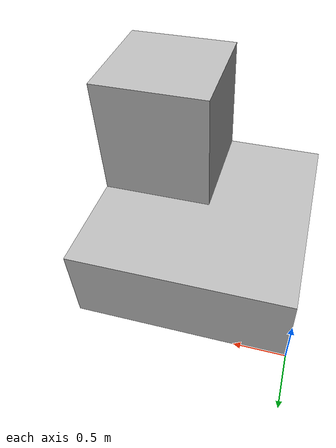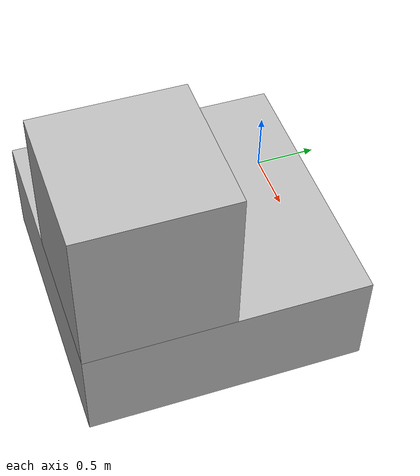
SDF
<?xml version="1.0"?>
<sdf version="1.6">
  <model name="obstacle_06">
    <static>true</static>

    <link name="link_06_1">
      <pose frame=''>1.05 -1.05 0.40 0 -0 0</pose>
      <collision name="body_collision">
        <geometry>
          <box>
            <size>2.10 2.10 0.80</size>
          </box>
        </geometry>
      </collision>

      <visual name="visual_06_1">
	<pose frame=''>0 0 0 0 -0 0</pose>
        <geometry>
          <box>
            <size>2.10 2.10 0.80</size>
          </box>
	</geometry>

	    <material>
		<script>
			<uri>model://obstacle_06/materials/scripts</uri>
			<uri>model://obstacle_06/materials/textures</uri>
			<name>repeated_06</name>
		</script>
	    </material>

      </visual>

    </link>

    <link name="link_06_2">
      <pose frame=''>1.55 -1.55 1.4 0 -0 0</pose>
      <collision name="body_collision">
        <geometry>
          <box>
            <size>1.10 1.10 1.20</size>
          </box>
        </geometry>
      </collision>

      <visual name="visual_06_2">
	<pose frame=''>0 0 0 0 -0 0</pose>
        <geometry>
          <box>
            <size>1.10 1.10 1.20</size>
          </box>
	</geometry>

	    <material>
		<script>
			<uri>model://obstacle_06/materials/scripts</uri>
			<uri>model://obstacle_06/materials/textures</uri>
			<name>repeated_06</name>
		</script>
	    </material>

      </visual>

    </link>

  </model>
</sdf>
